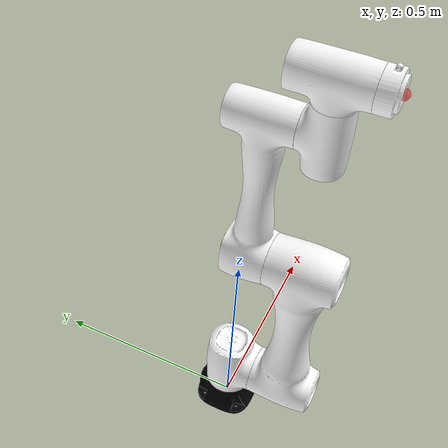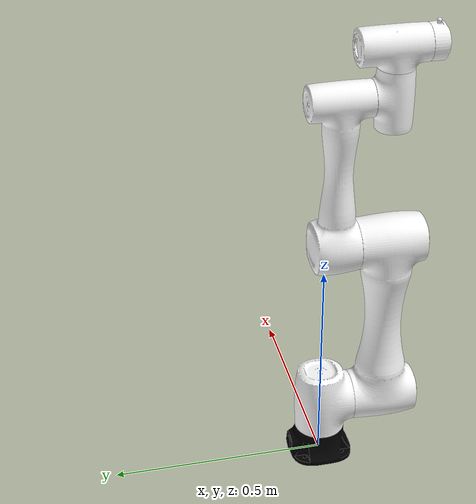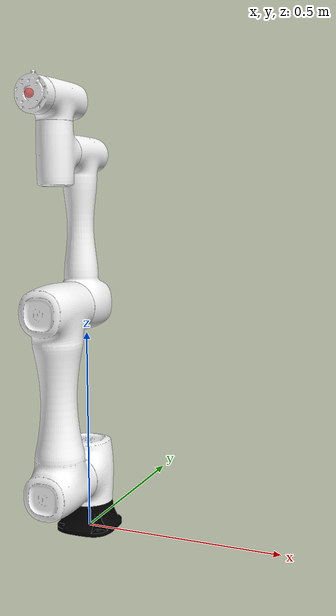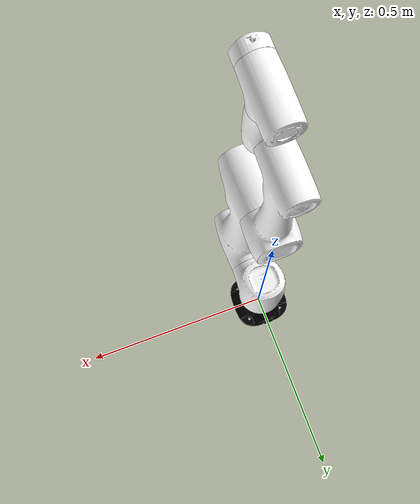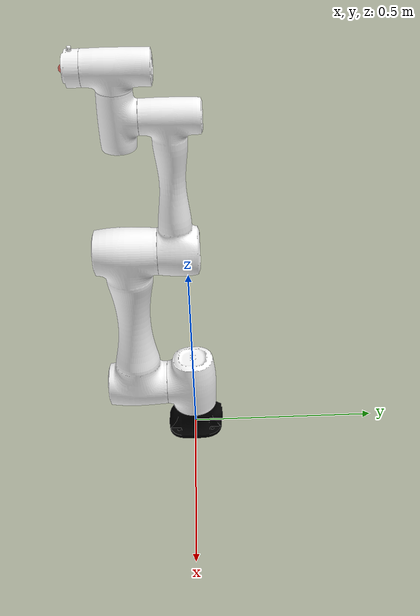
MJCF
<?xml version='1.0' encoding='utf-8'?>
<mujoco model="cr5_robot">
  <compiler angle="radian" meshdir="meshes" />
  <asset>
    <mesh name="base_link" content_type="model/stl" file="base_link.stl" />
    <mesh name="Link1" content_type="model/stl" file="Link1.stl" />
    <mesh name="Link2" content_type="model/stl" file="Link2.stl" />
    <mesh name="Link3" content_type="model/stl" file="Link3.stl" />
    <mesh name="Link4" content_type="model/stl" file="Link4.stl" />
    <mesh name="Link5" content_type="model/stl" file="Link5.stl" />
    <mesh name="Link6" content_type="model/stl" file="Link6.stl" />
  </asset>
  <worldbody>
    <geom type="mesh" rgba="0 0 0 1" mesh="base_link" />
    <body name="Link1" pos="0 0 0.147">
      <inertial pos="-8.7268e-07 -0.0032576 -0.0076748" quat="0.615786 0.347596 -0.347595 0.615761" mass="1.6123" diaginertia="0.00354972 0.0029122 0.00255298" />
      <joint name="joint1" pos="0 0 0" axis="0 0 1" range="-3.14 3.14" actuatorfrcrange="-150 150" damping="10" />
      <geom type="mesh" rgba="1 1 1 1" mesh="Link1" />
      <body name="Link2" quat="0.499998 0.5 0.5 -0.500002">
        <inertial pos="-0.21351 -1.3842e-06 0.14252" quat="8.38738e-05 0.707093 5.56955e-05 0.707121" mass="5.5186" diaginertia="0.028294 0.027553 0.0085919" />
        <joint name="joint2" pos="0 0 0" axis="0 0 1" range="-3.14 3.14" actuatorfrcrange="-150 150" damping="10" />
        <geom type="mesh" rgba="1 1 1 1" mesh="Link2" />
        <body name="Link3" pos="-0.427 0 0">
          <inertial pos="-0.15231 -1.4079e-07 0.022693" quat="0 0.714013 0 0.700132" mass="2.8536" diaginertia="0.00955763 0.0092967 0.00325837" />
          <joint name="joint3" pos="0 0 0" axis="0 0 1" range="-2.86 2.86" actuatorfrcrange="-150 150" damping="8" />
          <geom type="mesh" rgba="1 1 1 1" mesh="Link3" />
          <body name="Link4" pos="-0.357 0 0.141" quat="0.707105 0 0 -0.707108">
            <inertial pos="-3.2386e-07 -0.002077 -0.0015548" quat="0.653428 0.270173 -0.270153 0.653495" mass="0.67058" diaginertia="0.000764755 0.00066939 0.000543135" />
            <joint name="joint4" pos="0 0 0" axis="0 0 1" range="-3.14 3.14" actuatorfrcrange="-150 150" damping="5" />
            <geom type="mesh" rgba="1 1 1 1" mesh="Link4" />
            <body name="Link5" pos="0 -0.116 0" quat="0.707105 0.707108 0 0">
              <inertial pos="-3.7738e-07 -0.0045777 -0.0012971" quat="0.27195 0.652753 -0.652695 0.271929" mass="0.7269" diaginertia="0.000832194 0.00073069 0.000593666" />
              <joint name="joint5" pos="0 0 0" axis="0 0 1" range="-3.14 3.14" actuatorfrcrange="-150 150" damping="5" />
              <geom type="mesh" rgba="1 1 1 1" mesh="Link5" />
              <body name="Link6" pos="0 0.105 0" quat="0.707105 -0.707108 0 0">
                <inertial pos="5.0777e-11 9.3774e-05 -0.019285" quat="-0.000970713 0.707106 -0.000970713 0.707106" mass="0.15789" diaginertia="0.00012951 7.91676e-05 7.8045e-05" />
                <joint name="joint6" pos="0 0 0" axis="0 0 1" range="-6.28 6.28" actuatorfrcrange="-150 150" damping="3" />
                <geom type="mesh" rgba="1 1 1 1" mesh="Link6" />
                <site name="ee_site" pos="0 0 0" size="0.01" rgba="1 0 0 0.5" />
              </body>
            </body>
          </body>
        </body>
      </body>
    </body>
  </worldbody>
  <option timestep="0.002" gravity="0 0 -9.81" />
  <default>
    <joint damping="5" />
    <geom condim="4" friction="1 0.5 0.005" />
  </default>
  <actuator>
    <position name="joint1_ctrl" joint="joint1" kp="200" ctrlrange="-3.14 3.14" />
    <position name="joint2_ctrl" joint="joint2" kp="200" ctrlrange="-3.14 3.14" />
    <position name="joint3_ctrl" joint="joint3" kp="150" ctrlrange="-2.86 2.86" />
    <position name="joint4_ctrl" joint="joint4" kp="80" ctrlrange="-3.14 3.14" />
    <position name="joint5_ctrl" joint="joint5" kp="80" ctrlrange="-3.14 3.14" />
    <position name="joint6_ctrl" joint="joint6" kp="50" ctrlrange="-6.28 6.28" />
  </actuator>
</mujoco>
